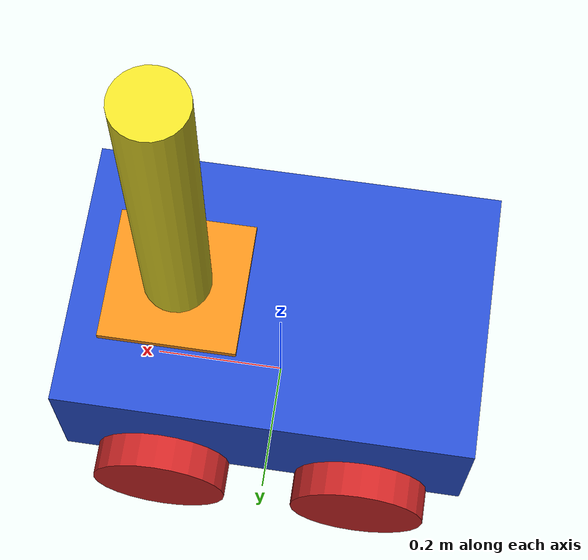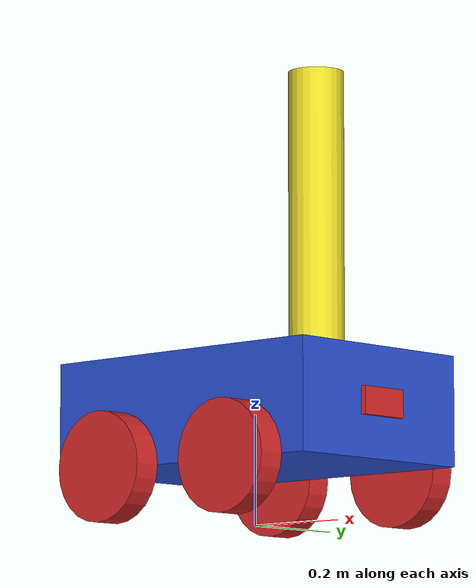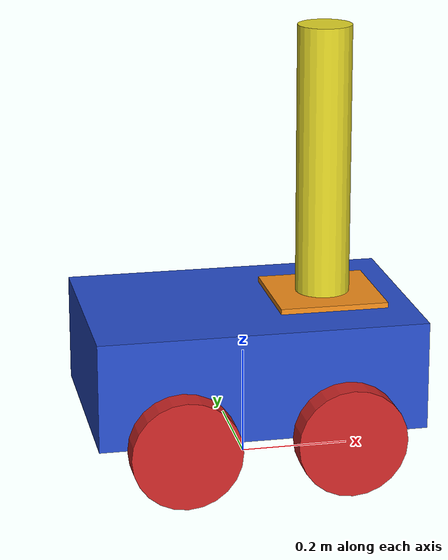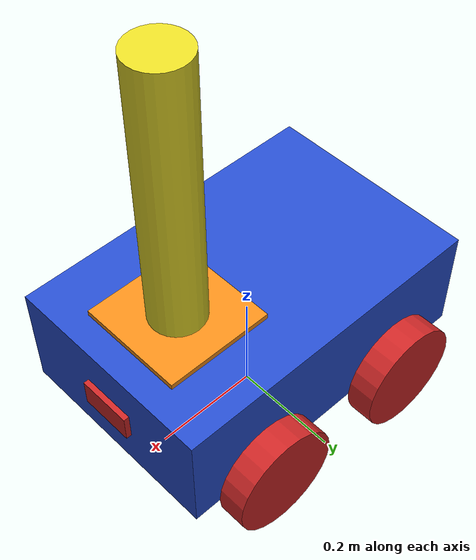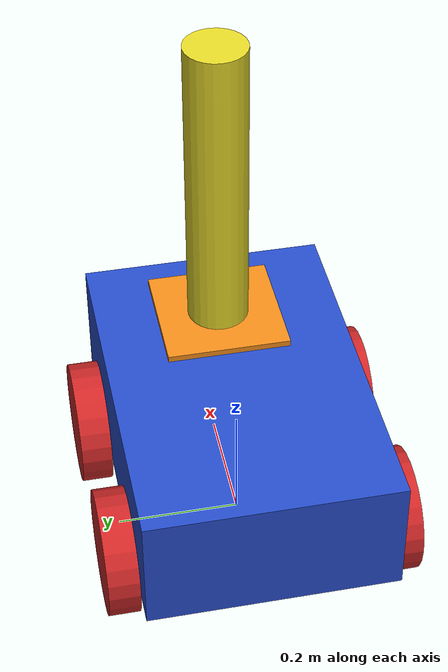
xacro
<?xml version="1.0"?>
<robot name="my_robot" xmlns:xacro="http://wwww.ros.org/wiki/xacro">

    <xacro:include filename="/home/aman/ros2_ws/src/my_robot_description/urdf/common_property.xacro" />
    <xacro:include filename="/home/aman/ros2_ws/src/my_robot_description/urdf/mobile_base.xacro" />
    <xacro:include filename="/home/aman/ros2_ws/src/my_robot_description/urdf/mobile_base_gazebo.xacro" />
    <xacro:include filename="/home/aman/ros2_ws/src/my_robot_description/urdf/arm.xacro" />
    <xacro:include filename="/home/aman/ros2_ws/src/my_robot_description/urdf/arm_gazebo.xacro" />
    <xacro:include filename="/home/aman/ros2_ws/src/my_robot_description/urdf/camera.xacro" />

    <joint name="mobile_base_arm_joint" type="fixed">
        <parent link="base_link" />
        <child link="arm_base_link" />
        <origin xyz="${base_length / 4.0} 0 ${base_height}" rpy="0 0 0" />
    </joint>

</robot>

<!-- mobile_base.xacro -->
<robot xmlns:xacro="http://www.ros.org/wiki/xacro">

    <xacro:property name="base_length" value="0.6" />
    <xacro:property name="base_width" value="0.4" />
    <xacro:property name="base_height" value="0.2" />
    <xacro:property name="wheel_radius" value="0.1" />
    <xacro:property name="wheel_length" value="0.05" />

    <link name="imu_frame"/>

    <joint name="imu_joint" type="fixed">
        <parent link="base_link"/>
        <child link="imu_frame"/>
        <origin xyz="0.0 0.0 0.08" rpy="0.0 0.0 0.0"/>
    </joint>

    <link name="base_link">
        <visual>
            <geometry>
                <box size="${base_length} ${base_width} ${base_height}" />
            </geometry>
            <origin xyz="0 0 ${base_height / 2.0}" rpy="0 0 0" />
            <material name="blue" />
        </visual>
        <collision>
            <geometry>
                <box size="${base_length} ${base_width} ${base_height}" />
            </geometry>
            <origin xyz="0 0 ${base_height / 2.0}" rpy="0 0 0" />
        </collision>
        <xacro:box_inertia m="100.0" l="${2*base_length}" w="${2*base_width}" h="${2*base_height}"
                           xyz="0 0 ${base_height / 2.0}" rpy="0 0 0" />
    </link>

    <xacro:macro name="wheel_link" params="prefix">
        <link name="${prefix}_wheel_link">
            <visual>
                <geometry>
                    <cylinder radius="${wheel_radius}" length="${wheel_length}" />
                </geometry>
                <origin xyz="0 0 0" rpy="${pi / 2.0} 0 0" />
                <material name="red" />
            </visual>
            <collision>
                <geometry>
                    <cylinder radius="${wheel_radius}" length="${wheel_length}" />
                </geometry>
                <origin xyz="0 0 0" rpy="${pi / 2.0} 0 0" />
            </collision>
            <xacro:cylinder_inertia m="10.0" r="${2*wheel_radius}" h="${2*wheel_length}"
                                    xyz="0 0 0" rpy="${pi / 2.0} 0 0" />
        </link>
    </xacro:macro>

    <xacro:wheel_link prefix="right_back" />
    <xacro:wheel_link prefix="left_back" />
    <xacro:wheel_link prefix="right_front" />
    <xacro:wheel_link prefix="left_front" />

    <link name="base_footprint">
    </link>

    <joint name="base_right_back_wheel_joint" type="continuous">
        <parent link="base_link" />
        <child link="right_back_wheel_link" />
        <origin xyz="${-base_length / 4.0} ${-(base_width + wheel_length) / 2.0} 0" rpy="0 0 0" />
        <axis xyz="0 1 0" />
    </joint>

    <joint name="base_right_front_wheel_joint" type="continuous">
        <parent link="base_link" />
        <child link="right_front_wheel_link" />
        <origin xyz="${(base_length) / 4.0} ${-(base_width + wheel_length) / 2.0} 0" rpy="0 0 0" />
        <axis xyz="0 1 0" />
    </joint>

     <joint name="base_left_back_wheel_joint" type="continuous">
        <parent link="base_link" />
        <child link="left_back_wheel_link" />
        <origin xyz="${-base_length / 4.0} ${(base_width + wheel_length) / 2.0} 0" rpy="0 0 0" />
        <axis xyz="0 1 0" />
    </joint>

    <joint name="base_left_front_wheel_joint" type="continuous">
        <parent link="base_link" />
        <child link="left_front_wheel_link" />
        <origin xyz="${base_length / 4.0} ${(base_width + wheel_length) / 2.0} 0" rpy="0 0 0" />
        <axis xyz="0 1 0" />
    </joint>

    <joint name="base_footprint_joint" type="fixed">
        <parent link="base_footprint" />
        <child link="base_link" />
        <origin xyz="0 0 ${wheel_radius}" rpy="0 0 0" />
    </joint>

</robot>

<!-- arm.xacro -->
<robot xmlns:xacro="http://www.ros.org/wiki/xacro">

    <xacro:property name="arm_base_length" value="0.2" />
    <xacro:property name="arm_base_width" value="0.2" />
    <xacro:property name="arm_base_height" value="0.01" />
    <xacro:property name="forearm_radius" value="0.05" />
    <xacro:property name="forearm_length" value="0.5" />

    <link name="arm_base_link">
        <visual>
            <geometry>
                <box size="${arm_base_length} ${arm_base_width} ${arm_base_height}" />
            </geometry>
            <origin xyz="0 0 ${arm_base_height / 2.0}" rpy="0 0 0" />
            <material name="orange" />
        </visual>
        <collision>
            <geometry>
                <box size="${arm_base_length} ${arm_base_width} ${arm_base_height}" />
            </geometry>
            <origin xyz="0 0 ${arm_base_height / 2.0}" rpy="0 0 0" />
        </collision>
        <xacro:box_inertia m="0.5" l="${2*arm_base_length}" w="${2*arm_base_width}" h="${2*arm_base_height}"
                           xyz="0 0 ${arm_base_height / 2.0}" rpy="0 0 0" />
    </link>

    <link name="forearm_link">
        <visual>
            <geometry>
                <cylinder radius="${forearm_radius}" length="${forearm_length}" />
            </geometry>
            <origin xyz="0 0 ${forearm_length/2.0}" rpy="0 0 0" />
            <material name="yellow" />
        </visual>
        <collision>
            <geometry>
                <cylinder radius="${forearm_radius}" length="${forearm_length}" />
            </geometry>
            <origin xyz="0 0 ${forearm_length/2.0}" rpy="0 0 0" />
        </collision>
        <xacro:cylinder_inertia m="0.3" r="${2*forearm_radius}" h="${2*forearm_length}"
                                xyz="0 0 ${forearm_length/2.0}" rpy="0 0 0" />
    </link>

    <joint name="arm_base_forearm_joint" type="revolute">
        <parent link="arm_base_link" />
        <child link="forearm_link" />
        <origin xyz="0 0 ${arm_base_height}" rpy="0 0 0" />
        <axis xyz="0 0 1" />
        <dynamics damping="1" friction="2"/>
        <limit lower="-3.14" upper="3.14" effort="500" velocity="1.0"/>
    </joint>

</robot>

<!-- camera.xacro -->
<robot xmlns:xacro="http://www.ros.org/wiki/xacro">

    <xacro:property name="camera_length" value="0.01" />
    <xacro:property name="camera_width" value="0.1" />
    <xacro:property name="camera_height" value="0.05" />

    <link name="camera_link">
        <visual>
            <geometry>
                <box size="${camera_length} ${camera_width} ${camera_height}" />
            </geometry>
            <material name="red" />
        </visual>
        <collision>
            <geometry>
                <box size="${camera_length} ${camera_width} ${camera_height}" />
            </geometry>
        </collision>
        <xacro:box_inertia m="0.1" l="${camera_length}" w="${camera_width}" h="${camera_height}"
                           xyz="0 0 0" rpy="0 0 0" />
    </link>

    <joint name="base_camera_joint" type="fixed">
        <parent link="base_link" />
        <child link="camera_link" />
        <origin xyz="${(base_length + camera_length) / 2.0} 0 ${base_height / 2.0}" rpy="0 0 0" />
    </joint>

    <gazebo reference="camera_link">
        <material>Gazebo/Red</material>
        <sensor name="camera_sensor" type="camera">
            <pose>0 0 0 0 0 0</pose>
            <visualize>true</visualize>
            <update_rate>10.0</update_rate>
            <plugin name="camera_controller" filename="libgazebo_ros_camera.so">
                <frame_name>camera_link</frame_name>
            </plugin>
        </sensor>
    </gazebo>

</robot>
